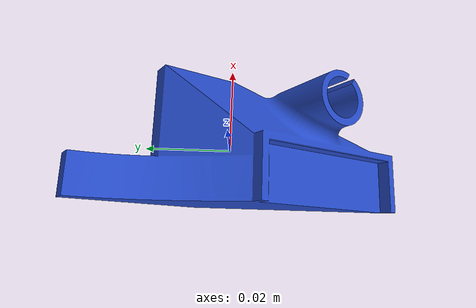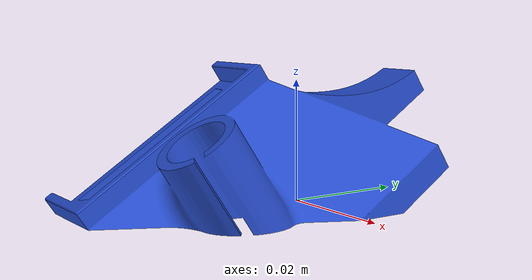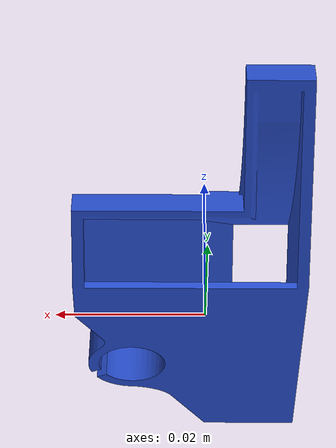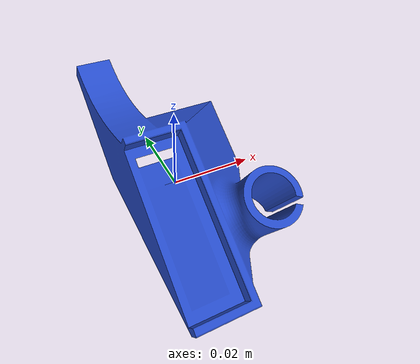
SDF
<?xml version="1.0" ?>
<sdf version="1.5">
  <model name="nozzle">
    <static>false</static>
    <link name="nozzle_link">
      <self_collide>true</self_collide>

      <collision name="collision">
        <geometry>
          <mesh>
            <uri>model://mahler_obj/nozzle/meshes/nozzle.dae</uri>
            <scale>0.6 0.6 0.6</scale>
          </mesh>
        </geometry>
      </collision>

      <visual name="visual">
        <geometry>
          <mesh>
            <uri>model://mahler_obj/nozzle/meshes/nozzle.dae</uri>
            <scale>0.6 0.6 0.6</scale>
          </mesh>
        </geometry>
        <material>
          <script>
            <uri>file://media/materials/scripts/gazebo.material</uri>
            <name>Gazebo/Blue</name>
          </script>
        </material>
      </visual>
    </link>

  </model>
</sdf>
